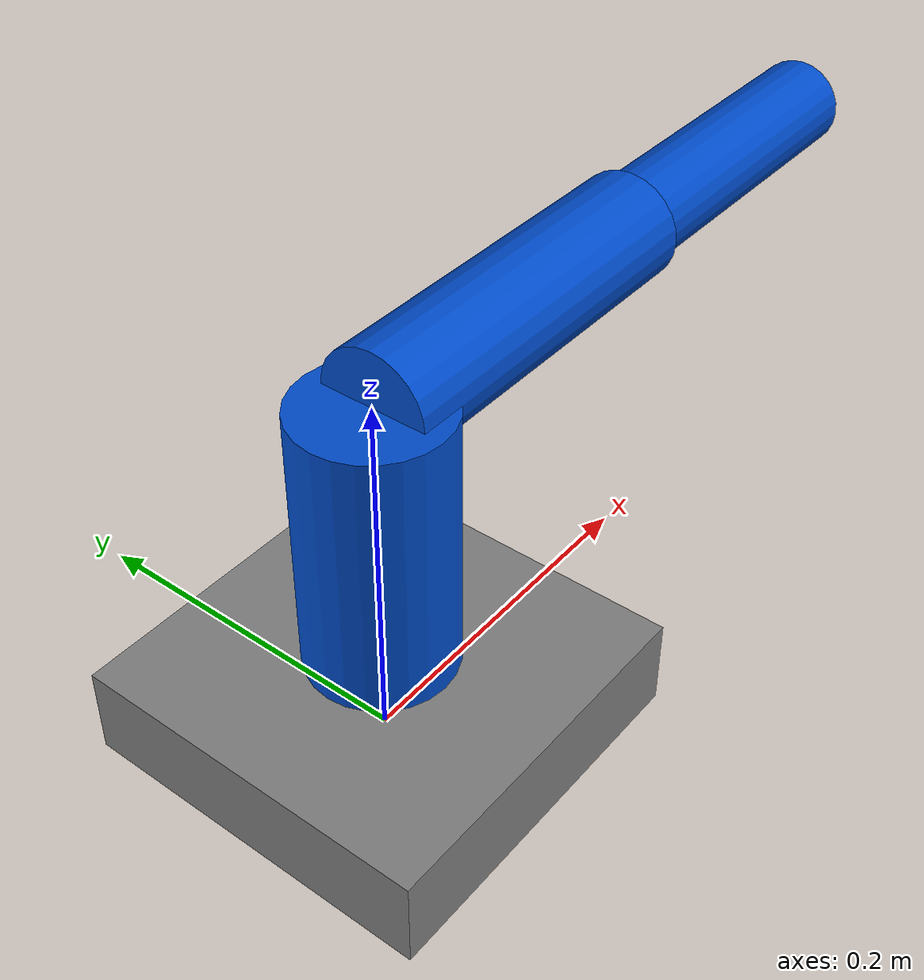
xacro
<?xml version="1.0"?>
<robot name="simple_arm" xmlns:xacro="http://www.ros.org/wiki/xacro">

    <xacro:property name="INERTIA_MULTIPLY" value="1.0"/>

    <xacro:macro name="box_inertia" params="m l w h xyz rpy">
        <inertial>
            <origin xyz="${xyz}" rpy="${rpy}"/>
            <mass value="${m}"/>
            <inertia
                ixx="${INERTIA_MULTIPLY * (m/12.0) * (w*w + h*h)}" ixy="0.0" ixz="0.0"
                iyy="${INERTIA_MULTIPLY * (m/12.0) * (l*l + h*h)}" iyz="0.0"
                izz="${INERTIA_MULTIPLY * (m/12.0) * (l*l + w*w)}"/>
        </inertial>
    </xacro:macro>

    <xacro:macro name="sphere_inertia" params="m r xyz rpy">
        <inertial>
            <origin xyz="${xyz}" rpy="${rpy}"/>
            <mass value="${m}"/>
            <inertia
                ixx="${INERTIA_MULTIPLY * (2.0/5.0) * m * r*r}" ixy="0.0" ixz="0.0"
                iyy="${INERTIA_MULTIPLY * (2.0/5.0) * m * r*r}" iyz="0.0"
                izz="${INERTIA_MULTIPLY * (2.0/5.0) * m * r*r}"/>
        </inertial>
    </xacro:macro>

    <xacro:macro name="cylinder_inertia" params="m r h xyz rpy">
        <inertial>
            <origin xyz="${xyz}" rpy="${rpy}"/>
            <mass value="${m}"/>
            <inertia
                ixx="${INERTIA_MULTIPLY * (m/12.0) * (3.0*r*r + h*h)}" ixy="0.0" ixz="0.0"
                iyy="${INERTIA_MULTIPLY * (m/12.0) * (3.0*r*r + h*h)}" iyz="0.0"
                izz="${INERTIA_MULTIPLY * (m/2.0) * r*r}"/>
        </inertial>
    </xacro:macro>

    <material name="grey">
        <color rgba="0.5 0.5 0.5 1.0"/>
    </material>
    <material name="blue">
        <color rgba="0.0 0.3 0.8 1.0"/>
    </material>
    <material name="white">
        <color rgba="1.0 1.0 1.0 1.0"/>
    </material>

    <link name="base_link">
        <inertial>
            <origin xyz="0.0 0.0 0.025" rpy="0.0 0.0 0.0"/>
            <mass value="1.0"/>
            <inertia ixx="0.00354167" ixy="0" ixz="0" iyy="0.00354167" iyz="0" izz="0.00666667"/>
        </inertial>
        <visual>
            <origin xyz="0.0 0.0 0.025" rpy="0.0 0.0 0.0"/>
            <geometry>
                <box size="0.2 0.2 0.05"/>
            </geometry>
            <material name="grey"/>
        </visual>
        <collision>
            <origin xyz="0.0 0.0 0.025" rpy="0.0 0.0 0.0"/>
            <geometry>
                <box size="0.2 0.2 0.05"/>
            </geometry>
        </collision>
    </link>

    <link name="shoulder_link">
        <inertial>
            <origin xyz="0.0 0.0 0.075" rpy="0.0 0.0 0.0"/>
            <mass value="0.5"/>
            <inertia ixx="0.0011375" ixy="0" ixz="0" iyy="0.0011375" iyz="0" izz="0.0004"/>
        </inertial>
        <visual>
            <origin xyz="0.0 0.0 0.075" rpy="0.0 0.0 0.0"/>
            <geometry>
                <cylinder radius="0.04" length="0.15"/>
            </geometry>
            <material name="blue"/>
        </visual>
        <collision>
            <origin xyz="0.0 0.0 0.075" rpy="0.0 0.0 0.0"/>
            <geometry>
                <cylinder radius="0.04" length="0.15"/>
            </geometry>
        </collision>
    </link>

    <link name="upper_arm_link">
        <inertial>
            <origin xyz="0.1 0.0 0.0" rpy="0.0 -1.5707963267948966 0.0"/>
            <mass value="0.4"/>
            <inertia ixx="0.00142333" ixy="0" ixz="0" iyy="0.00142333" iyz="0" izz="0.00018"/>
        </inertial>
        <visual>
            <origin xyz="0.1 0.0 0.0" rpy="0.0 -1.5707963267948966 0.0"/>
            <geometry>
                <cylinder radius="0.03" length="0.2"/>
            </geometry>
            <material name="blue"/>
        </visual>
        <collision>
            <origin xyz="0.1 0.0 0.0" rpy="0.0 -1.5707963267948966 0.0"/>
            <geometry>
                <cylinder radius="0.03" length="0.2"/>
            </geometry>
        </collision>
    </link>

    <link name="forearm_link">
        <inertial>
            <origin xyz="0.09 0.0 0.0" rpy="0.0 -1.5707963267948966 0.0"/>
            <mass value="0.25"/>
            <inertia ixx="0.000714062" ixy="0" ixz="0" iyy="0.000714062" iyz="0" izz="7.8125e-05"/>
        </inertial>
        <visual>
            <origin xyz="0.09 0.0 0.0" rpy="0.0 -1.5707963267948966 0.0"/>
            <geometry>
                <cylinder radius="0.025" length="0.18"/>
            </geometry>
            <material name="blue"/>
        </visual>
        <collision>
            <origin xyz="0.09 0.0 0.0" rpy="0.0 -1.5707963267948966 0.0"/>
            <geometry>
                <cylinder radius="0.025" length="0.18"/>
            </geometry>
        </collision>
    </link>

    <link name="end_effector_link">
        <inertial>
            <origin xyz="0.0 0.0 0.0" rpy="0.0 0.0 0.0"/>
            <mass value="0.05"/>
            <inertia ixx="8e-06" ixy="0" ixz="0" iyy="8e-06" iyz="0" izz="8e-06"/>
        </inertial>
        <visual>
            <origin xyz="0.0 0.0 0.0" rpy="0.0 0.0 0.0"/>
            <geometry>
                <sphere radius="0.02"/>
            </geometry>
            <material name="white"/>
        </visual>
        <collision>
            <origin xyz="0.0 0.0 0.0" rpy="0.0 0.0 0.0"/>
            <geometry>
                <sphere radius="0.02"/>
            </geometry>
        </collision>
    </link>

    <joint name="base_shoulder_joint" type="revolute">
        <origin xyz="0.0 0.0 0.05" rpy="0.0 0.0 0.0"/>
        <parent link="base_link"/>
        <child link="shoulder_link"/>
        <axis xyz="0.0 0.0 1.0"/>
        <limit lower="-3.141592653589793" upper="3.141592653589793" effort="50.0" velocity="2.0"/>
        <dynamics damping="0.5" friction="0.01"/>
    </joint>

    <joint name="shoulder_upper_arm_joint" type="revolute">
        <origin xyz="0.0 0.0 0.15" rpy="0.0 0.0 0.0"/>
        <parent link="shoulder_link"/>
        <child link="upper_arm_link"/>
        <axis xyz="0.0 1.0 0.0"/>
        <limit lower="-1.5707963267948966" upper="0" effort="30.0" velocity="2.0"/>
        <dynamics damping="0.2" friction="0.005"/>
    </joint>

    <joint name="upper_arm_forearm_joint" type="revolute">
        <origin xyz="0.2 0.0 0.0" rpy="0.0 0.0 0.0"/>
        <parent link="upper_arm_link"/>
        <child link="forearm_link"/>
        <axis xyz="0.0 1.0 0.0"/>
        <limit lower="-2.356194490192345" upper="1.5707963267948966" effort="20.0" velocity="2.5"/>
        <dynamics damping="0.1" friction="0.002"/>
    </joint>

    <joint name="forearm_ee_joint" type="fixed">
        <origin xyz="0.18 0.0 0.0" rpy="0.0 0.0 0.0"/>
        <parent link="forearm_link"/>
        <child link="end_effector_link"/>
    </joint>

</robot>
